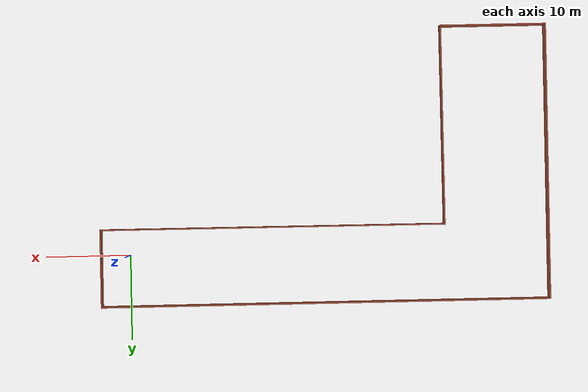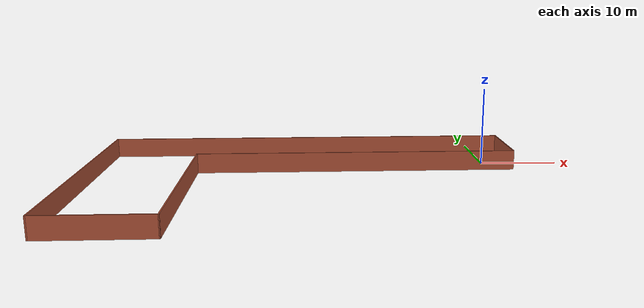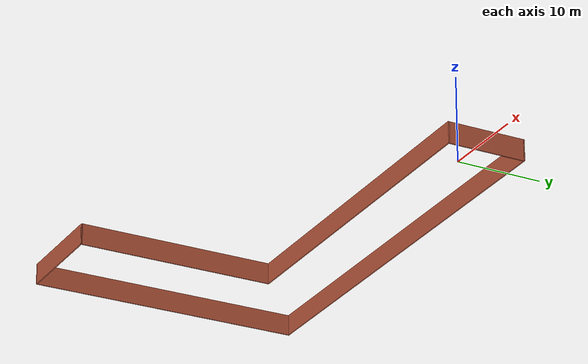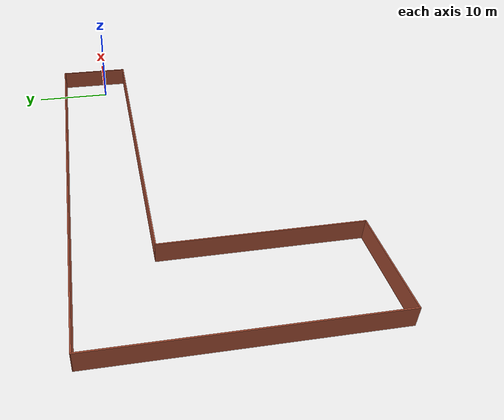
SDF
<?xml version='1.0'?>
<sdf version='1.6'>
  <model name='hanhlang'>
    <pose frame=''>-23.0559 -10.2028 0 0 -0 0</pose>
    <link name='Wall_1'>
      <collision name='Wall_1_Collision'>
        <geometry>
          <box>
            <size>9.25 0.15 2.5</size>
          </box>
        </geometry>
        <pose frame=''>0 0 1.25 0 -0 0</pose>
      </collision>
      <visual name='Wall_1_Visual'>
        <pose frame=''>0 0 1.25 0 -0 0</pose>
        <geometry>
          <box>
            <size>9.25 0.15 2.5</size>
          </box>
        </geometry>
        <material>
          <script>
            <uri>file://media/materials/scripts/gazebo.material</uri>
            <name>Gazebo/Bricks</name>
          </script>
          <ambient>1 1 1 1</ambient>
        </material>
        <meta>
          <layer>0</layer>
        </meta>
      </visual>
      <pose frame=''>26.4323 11.6741 0 0 -0 1.5708</pose>
    </link>
    <link name='Wall_5'>
      <collision name='Wall_5_Collision'>
        <geometry>
          <box>
            <size>53.0164 0.15 2.5</size>
          </box>
        </geometry>
        <pose frame=''>0 0 1.25 0 -0 0</pose>
      </collision>
      <visual name='Wall_5_Visual'>
        <pose frame=''>0 0 1.25 0 -0 0</pose>
        <geometry>
          <box>
            <size>53.0164 0.15 2.5</size>
          </box>
        </geometry>
        <material>
          <script>
            <uri>file://media/materials/scripts/gazebo.material</uri>
            <name>Gazebo/Bricks</name>
          </script>
          <ambient>1 1 1 1</ambient>
        </material>
        <meta>
          <layer>0</layer>
        </meta>
      </visual>
      <pose frame=''>-0.000902 16.1751 0 0 -0 -3.13961</pose>
    </link>
    <link name='Wall_6'>
      <collision name='Wall_6_Collision'>
        <geometry>
          <box>
            <size>32.5 0.15 2.5</size>
          </box>
        </geometry>
        <pose frame=''>0 0 1.25 0 -0 0</pose>
      </collision>
      <visual name='Wall_6_Visual'>
        <pose frame=''>0 0 1.25 0 -0 0</pose>
        <geometry>
          <box>
            <size>32.5 0.15 2.5</size>
          </box>
        </geometry>
        <material>
          <script>
            <uri>file://media/materials/scripts/gazebo.material</uri>
            <name>Gazebo/Bricks</name>
          </script>
          <ambient>1 1 1 1</ambient>
        </material>
        <meta>
          <layer>0</layer>
        </meta>
      </visual>
      <pose frame=''>-26.4341 -0.052243 0 0 -0 -1.5708</pose>
    </link>
    <link name='Wall_7'>
      <collision name='Wall_7_Collision'>
        <geometry>
          <box>
            <size>12.5 0.15 2.5</size>
          </box>
        </geometry>
        <pose frame=''>0 0 1.25 0 -0 0</pose>
      </collision>
      <visual name='Wall_7_Visual'>
        <pose frame=''>0 0 1.25 0 -0 0</pose>
        <geometry>
          <box>
            <size>12.5 0.15 2.5</size>
          </box>
        </geometry>
        <material>
          <script>
            <uri>file://media/materials/scripts/gazebo.material</uri>
            <name>Gazebo/Bricks</name>
          </script>
          <ambient>1 1 1 1</ambient>
        </material>
        <meta>
          <layer>0</layer>
        </meta>
      </visual>
      <pose frame=''>-20.2591 -16.2272 0 0 -0 0</pose>
    </link>
    <link name='Wall_8'>
      <collision name='Wall_8_Collision'>
        <geometry>
          <box>
            <size>23.4969 0.15 2.5</size>
          </box>
        </geometry>
        <pose frame=''>0 0 1.25 0 -0 0</pose>
      </collision>
      <visual name='Wall_8_Visual'>
        <pose frame=''>0 0 1.25 0 -0 0</pose>
        <geometry>
          <box>
            <size>23.4969 0.15 2.5</size>
          </box>
        </geometry>
        <material>
          <script>
            <uri>file://media/materials/scripts/gazebo.material</uri>
            <name>Gazebo/Bricks</name>
          </script>
          <ambient>1 1 1 1</ambient>
        </material>
        <meta>
          <layer>0</layer>
        </meta>
      </visual>
      <pose frame=''>-14.1266 -4.55388 0 0 -0 1.57444</pose>
    </link>
    <link name='Wall_9'>
      <collision name='Wall_9_Collision'>
        <geometry>
          <box>
            <size>40.75 0.15 2.5</size>
          </box>
        </geometry>
        <pose frame=''>0 0 1.25 0 -0 0</pose>
      </collision>
      <visual name='Wall_9_Visual'>
        <pose frame=''>0 0 1.25 0 -0 0</pose>
        <geometry>
          <box>
            <size>40.75 0.15 2.5</size>
          </box>
        </geometry>
        <material>
          <script>
            <uri>file://media/materials/scripts/gazebo.material</uri>
            <name>Gazebo/Bricks</name>
          </script>
          <ambient>1 1 1 1</ambient>
        </material>
        <meta>
          <layer>0</layer>
        </meta>
      </visual>
      <pose frame=''>6.1342 7.11949 0 0 -0 0</pose>
    </link>
    <static>1</static>
  </model>
</sdf>
